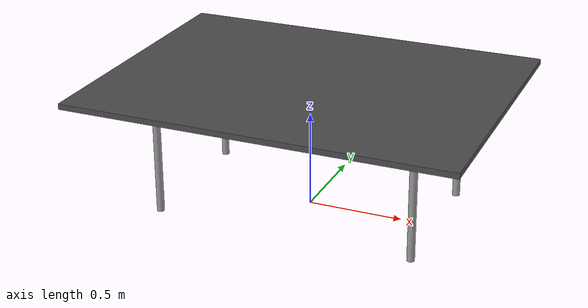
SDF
<?xml version="1.0" ?>
<sdf version="1.4">
  <model name="lab_table">
    <static>true</static>
    <link name="link">
      <collision name="surface">
        <pose>0 0 0.671 0 0 0</pose>
        <geometry>
          <box>
            <size>2.0 1.5 0.03</size>
          </box>
        </geometry>
        <surface>
          <friction>
            <ode>
              <mu>0.6</mu>
              <mu2>0.6</mu2>
            </ode>
          </friction>
        </surface>
      </collision>
      <visual name="visual1">
        <pose>0 0 0.671 0 0 0</pose>
        <geometry>
          <box>
            <size>2.0 1.5 0.03</size>
          </box>
        </geometry>
        <material>
          <script>
            <uri>file://media/materials/scripts/gazebo.material</uri>
            <name>Gazebo/DarkGrey</name>
          </script>
        </material>
      </visual>
      <collision name="front_left_leg">
        <pose>0.68 0.38 0.3355 0 0 0</pose>
        <geometry>
          <cylinder>
            <radius>0.02</radius>
            <length>0.671</length>
          </cylinder>
        </geometry>
      </collision>
      <visual name="front_left_leg">
        <pose>0.68 0.38 0.3355 0 0 0</pose>
        <geometry>
          <cylinder>
            <radius>0.02</radius>
            <length>0.671</length>
          </cylinder>
        </geometry>
        <material>
          <script>
            <uri>file://media/materials/scripts/gazebo.material</uri>
            <name>Gazebo/Grey</name>
          </script>
        </material>
      </visual>
      <collision name="front_right_leg">
        <pose>0.68 -0.38 0.3355 0 0 0</pose>
        <geometry>
          <cylinder>
            <radius>0.02</radius>
            <length>0.671</length>
          </cylinder>
        </geometry>
      </collision>
      <visual name="front_right_leg">
        <pose>0.68 -0.38 0.3355 0 0 0</pose>
        <geometry>
          <cylinder>
            <radius>0.02</radius>
            <length>0.671</length>
          </cylinder>
        </geometry>
        <material>
          <script>
            <uri>file://media/materials/scripts/gazebo.material</uri>
            <name>Gazebo/Grey</name>
          </script>
        </material>
      </visual>
      <collision name="back_right_leg">
        <pose>-0.68 -0.38 0.3355 0 0 0</pose>
        <geometry>
          <cylinder>
            <radius>0.02</radius>
            <length>0.671</length>
          </cylinder>
        </geometry>
      </collision>
      <visual name="back_right_leg">
        <pose>-0.68 -0.38 0.3355 0 0 0</pose>
        <geometry>
          <cylinder>
            <radius>0.02</radius>
            <length>0.671</length>
          </cylinder>
        </geometry>
        <material>
          <script>
            <uri>file://media/materials/scripts/gazebo.material</uri>
            <name>Gazebo/Grey</name>
          </script>
        </material>
      </visual>
      <collision name="back_left_leg">
        <pose>-0.68 0.38 0.3355 0 0 0</pose>
        <geometry>
          <cylinder>
            <radius>0.02</radius>
            <length>0.671</length>
          </cylinder>
        </geometry>
      </collision>
      <visual name="back_left_leg">
        <pose>-0.68 0.38 0.3355 0 0 0</pose>
        <geometry>
          <cylinder>
            <radius>0.02</radius>
            <length>0.671</length>
          </cylinder>
        </geometry>
        <material>
          <script>
            <uri>file://media/materials/scripts/gazebo.material</uri>
            <name>Gazebo/Grey</name>
          </script>
        </material>
      </visual>
    </link>
  </model>
</sdf>
